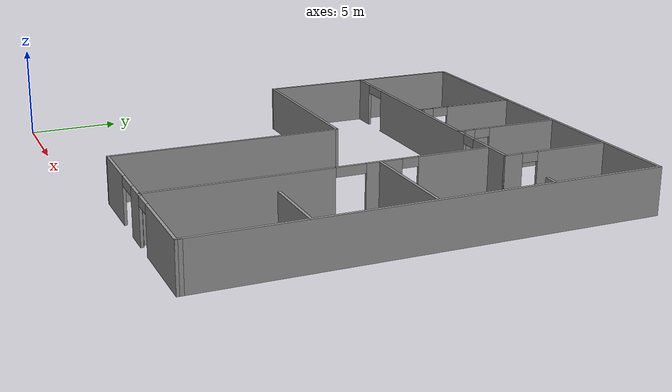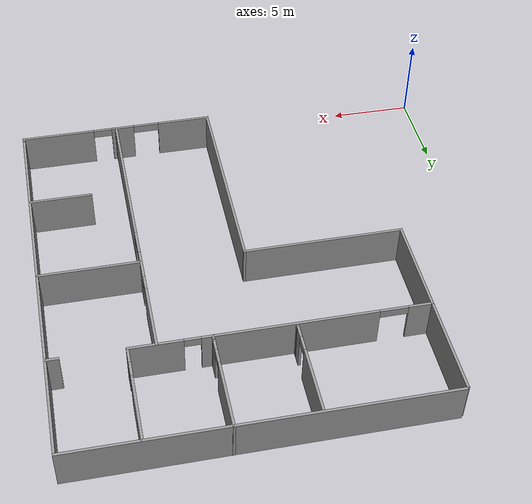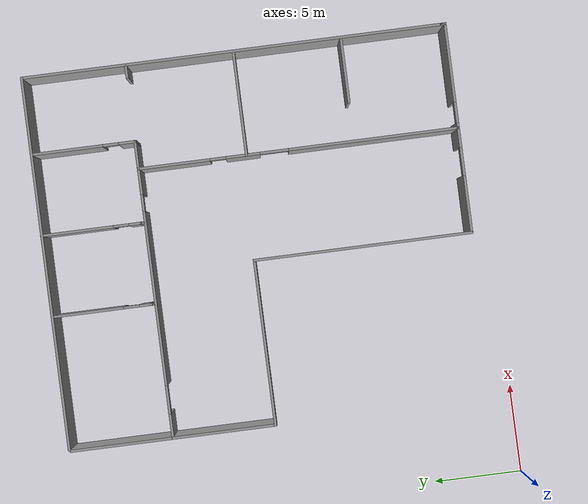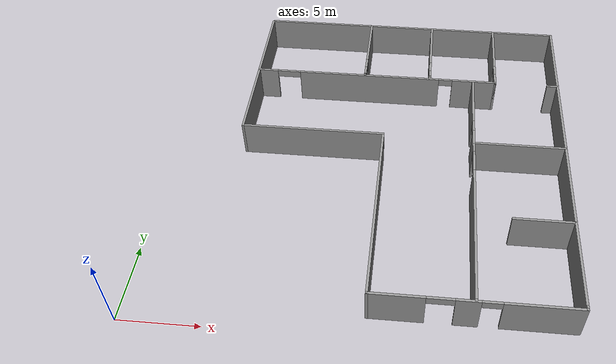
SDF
<?xml version='1.0'?>
<sdf version='1.6'>
  <model name='control_lab'>
    <pose frame=''>15.3955 13.48 0 0 -0 0</pose>
    <link name='Wall_0'>
      <collision name='Wall_0_Collision'>
        <geometry>
          <box>
            <size>21.25 0.15 2.5</size>
          </box>
        </geometry>
        <pose frame=''>0 0 1.25 0 -0 0</pose>
      </collision>
      <visual name='Wall_0_Visual'>
        <pose frame=''>0 0 1.25 0 -0 0</pose>
        <geometry>
          <box>
            <size>21.25 0.15 2.5</size>
          </box>
        </geometry>
        <material>
          <script>
            <uri>file://media/materials/scripts/gazebo.material</uri>
            <name>Gazebo/Grey</name>
          </script>
          <ambient>1 1 1 1</ambient>
        </material>
        <meta>
          <layer>0</layer>
        </meta>
      </visual>
      <pose frame=''>0.05 12.0211 0 0 -0 0</pose>
    </link>
    <link name='Wall_1'>
      <collision name='Wall_1_Collision'>
        <geometry>
          <box>
            <size>24 0.15 2.5</size>
          </box>
        </geometry>
        <pose frame=''>0 0 1.25 0 -0 0</pose>
      </collision>
      <visual name='Wall_1_Visual'>
        <pose frame=''>0 0 1.25 0 -0 0</pose>
        <geometry>
          <box>
            <size>24 0.15 2.5</size>
          </box>
        </geometry>
        <material>
          <script>
            <uri>file://media/materials/scripts/gazebo.material</uri>
            <name>Gazebo/Grey</name>
          </script>
          <ambient>1 1 1 1</ambient>
        </material>
        <meta>
          <layer>0</layer>
        </meta>
      </visual>
      <pose frame=''>10.6 0.096077 0 0 -0 -1.5708</pose>
    </link>
    <link name='Wall_10'>
      <pose frame=''>6.25094 9.06574 0 0 -0 1.5708</pose>
      <visual name='Wall_10_Visual_0'>
        <pose frame=''>-2.49624 0 1.25 0 -0 0</pose>
        <geometry>
          <box>
            <size>1.00752 0.15 2.5</size>
          </box>
        </geometry>
        <material>
          <script>
            <uri>file://media/materials/scripts/gazebo.material</uri>
            <name>Gazebo/Grey</name>
          </script>
          <ambient>1 1 1 1</ambient>
        </material>
        <meta>
          <layer>0</layer>
        </meta>
      </visual>
      <collision name='Wall_10_Collision_0'>
        <geometry>
          <box>
            <size>1.00752 0.15 2.5</size>
          </box>
        </geometry>
        <pose frame=''>-2.49624 0 1.25 0 -0 0</pose>
      </collision>
      <visual name='Wall_10_Visual_1'>
        <pose frame=''>0.953761 0 1.25 0 -0 0</pose>
        <geometry>
          <box>
            <size>4.09248 0.15 2.5</size>
          </box>
        </geometry>
        <material>
          <script>
            <uri>file://media/materials/scripts/gazebo.material</uri>
            <name>Gazebo/Grey</name>
          </script>
          <ambient>1 1 1 1</ambient>
        </material>
        <meta>
          <layer>0</layer>
        </meta>
      </visual>
      <collision name='Wall_10_Collision_1'>
        <geometry>
          <box>
            <size>4.09248 0.15 2.5</size>
          </box>
        </geometry>
        <pose frame=''>0.953761 0 1.25 0 -0 0</pose>
      </collision>
      <visual name='Wall_10_Visual_2'>
        <pose frame=''>-1.54248 0 2.25 0 -0 0</pose>
        <geometry>
          <box>
            <size>0.9 0.15 0.5</size>
          </box>
        </geometry>
        <material>
          <script>
            <uri>file://media/materials/scripts/gazebo.material</uri>
            <name>Gazebo/Grey</name>
          </script>
          <ambient>1 1 1 1</ambient>
        </material>
        <meta>
          <layer>0</layer>
        </meta>
      </visual>
      <collision name='Wall_10_Collision_2'>
        <geometry>
          <box>
            <size>0.9 0.15 0.5</size>
          </box>
        </geometry>
        <pose frame=''>-1.54248 0 2.25 0 -0 0</pose>
      </collision>
    </link>
    <link name='Wall_12'>
      <pose frame=''>-2.96596 9.21591 0 0 -0 -1.5708</pose>
      <visual name='Wall_12_Visual_0'>
        <pose frame=''>-0.818093 0 1.25 0 -0 0</pose>
        <geometry>
          <box>
            <size>4.11381 0.15 2.5</size>
          </box>
        </geometry>
        <material>
          <script>
            <uri>file://media/materials/scripts/gazebo.material</uri>
            <name>Gazebo/Grey</name>
          </script>
          <ambient>1 1 1 1</ambient>
        </material>
        <meta>
          <layer>0</layer>
        </meta>
      </visual>
      <collision name='Wall_12_Collision_0'>
        <geometry>
          <box>
            <size>4.11381 0.15 2.5</size>
          </box>
        </geometry>
        <pose frame=''>-0.818093 0 1.25 0 -0 0</pose>
      </collision>
      <visual name='Wall_12_Visual_1'>
        <pose frame=''>2.50691 0 1.25 0 -0 0</pose>
        <geometry>
          <box>
            <size>0.736186 0.15 2.5</size>
          </box>
        </geometry>
        <material>
          <script>
            <uri>file://media/materials/scripts/gazebo.material</uri>
            <name>Gazebo/Grey</name>
          </script>
          <ambient>1 1 1 1</ambient>
        </material>
        <meta>
          <layer>0</layer>
        </meta>
      </visual>
      <collision name='Wall_12_Collision_1'>
        <geometry>
          <box>
            <size>0.736186 0.15 2.5</size>
          </box>
        </geometry>
        <pose frame=''>2.50691 0 1.25 0 -0 0</pose>
      </collision>
      <visual name='Wall_12_Visual_2'>
        <pose frame=''>1.68881 0 2.25 0 -0 0</pose>
        <geometry>
          <box>
            <size>0.9 0.15 0.5</size>
          </box>
        </geometry>
        <material>
          <script>
            <uri>file://media/materials/scripts/gazebo.material</uri>
            <name>Gazebo/Grey</name>
          </script>
          <ambient>1 1 1 1</ambient>
        </material>
        <meta>
          <layer>0</layer>
        </meta>
      </visual>
      <collision name='Wall_12_Collision_2'>
        <geometry>
          <box>
            <size>0.9 0.15 0.5</size>
          </box>
        </geometry>
        <pose frame=''>1.68881 0 2.25 0 -0 0</pose>
      </collision>
    </link>
    <link name='Wall_13'>
      <collision name='Wall_13_Collision'>
        <geometry>
          <box>
            <size>0.25 0.15 2.5</size>
          </box>
        </geometry>
        <pose frame=''>0 0 1.25 0 -0 0</pose>
      </collision>
      <visual name='Wall_13_Visual'>
        <pose frame=''>0 0 1.25 0 -0 0</pose>
        <geometry>
          <box>
            <size>0.25 0.15 2.5</size>
          </box>
        </geometry>
        <material>
          <script>
            <uri>file://media/materials/scripts/gazebo.material</uri>
            <name>Gazebo/Grey</name>
          </script>
          <ambient>1 1 1 1</ambient>
        </material>
        <meta>
          <layer>0</layer>
        </meta>
      </visual>
      <pose frame=''>-2.96596 6.36592 0 0 -0 -1.5708</pose>
    </link>
    <link name='Wall_14'>
      <collision name='Wall_14_Collision'>
        <geometry>
          <box>
            <size>0.25 0.15 2.5</size>
          </box>
        </geometry>
        <pose frame=''>0 0 1.25 0 -0 0</pose>
      </collision>
      <visual name='Wall_14_Visual'>
        <pose frame=''>0 0 1.25 0 -0 0</pose>
        <geometry>
          <box>
            <size>0.25 0.15 2.5</size>
          </box>
        </geometry>
        <material>
          <script>
            <uri>file://media/materials/scripts/gazebo.material</uri>
            <name>Gazebo/Grey</name>
          </script>
          <ambient>1 1 1 1</ambient>
        </material>
        <meta>
          <layer>0</layer>
        </meta>
      </visual>
      <pose frame=''>-2.96596 6.26591 0 0 -0 -1.5708</pose>
    </link>
    <link name='Wall_16'>
      <pose frame=''>1.64671 9.22892 0 0 -0 -1.5708</pose>
      <visual name='Wall_16_Visual_0'>
        <pose frame=''>-0.809669 0 1.25 0 -0 0</pose>
        <geometry>
          <box>
            <size>4.13066 0.15 2.5</size>
          </box>
        </geometry>
        <material>
          <script>
            <uri>file://media/materials/scripts/gazebo.material</uri>
            <name>Gazebo/Grey</name>
          </script>
          <ambient>1 1 1 1</ambient>
        </material>
        <meta>
          <layer>0</layer>
        </meta>
      </visual>
      <collision name='Wall_16_Collision_0'>
        <geometry>
          <box>
            <size>4.13066 0.15 2.5</size>
          </box>
        </geometry>
        <pose frame=''>-0.809669 0 1.25 0 -0 0</pose>
      </collision>
      <visual name='Wall_16_Visual_1'>
        <pose frame=''>2.51533 0 1.25 0 -0 0</pose>
        <geometry>
          <box>
            <size>0.719338 0.15 2.5</size>
          </box>
        </geometry>
        <material>
          <script>
            <uri>file://media/materials/scripts/gazebo.material</uri>
            <name>Gazebo/Grey</name>
          </script>
          <ambient>1 1 1 1</ambient>
        </material>
        <meta>
          <layer>0</layer>
        </meta>
      </visual>
      <collision name='Wall_16_Collision_1'>
        <geometry>
          <box>
            <size>0.719338 0.15 2.5</size>
          </box>
        </geometry>
        <pose frame=''>2.51533 0 1.25 0 -0 0</pose>
      </collision>
      <visual name='Wall_16_Visual_2'>
        <pose frame=''>1.70566 0 2.25 0 -0 0</pose>
        <geometry>
          <box>
            <size>0.9 0.15 0.5</size>
          </box>
        </geometry>
        <material>
          <script>
            <uri>file://media/materials/scripts/gazebo.material</uri>
            <name>Gazebo/Grey</name>
          </script>
          <ambient>1 1 1 1</ambient>
        </material>
        <meta>
          <layer>0</layer>
        </meta>
      </visual>
      <collision name='Wall_16_Collision_2'>
        <geometry>
          <box>
            <size>0.9 0.15 0.5</size>
          </box>
        </geometry>
        <pose frame=''>1.70566 0 2.25 0 -0 0</pose>
      </collision>
    </link>
    <link name='Wall_19'>
      <collision name='Wall_19_Collision'>
        <geometry>
          <box>
            <size>0.416341 0.15 2.5</size>
          </box>
        </geometry>
        <pose frame=''>0 0 1.25 0 -0 0</pose>
      </collision>
      <visual name='Wall_19_Visual'>
        <pose frame=''>0 0 1.25 0 -0 0</pose>
        <geometry>
          <box>
            <size>0.416341 0.15 2.5</size>
          </box>
        </geometry>
        <material>
          <script>
            <uri>file://media/materials/scripts/gazebo.material</uri>
            <name>Gazebo/Grey</name>
          </script>
          <ambient>1 1 1 1</ambient>
        </material>
        <meta>
          <layer>0</layer>
        </meta>
      </visual>
      <pose frame=''>1.64593 6.29575 0 0 -0 -1.57672</pose>
    </link>
    <link name='Wall_2'>
      <collision name='Wall_2_Collision'>
        <geometry>
          <box>
            <size>0.25 0.15 2.5</size>
          </box>
        </geometry>
        <pose frame=''>0 0 1.25 0 -0 0</pose>
      </collision>
      <visual name='Wall_2_Visual'>
        <pose frame=''>0 0 1.25 0 -0 0</pose>
        <geometry>
          <box>
            <size>0.25 0.15 2.5</size>
          </box>
        </geometry>
        <material>
          <script>
            <uri>file://media/materials/scripts/gazebo.material</uri>
            <name>Gazebo/Grey</name>
          </script>
          <ambient>1 1 1 1</ambient>
        </material>
        <meta>
          <layer>0</layer>
        </meta>
      </visual>
      <pose frame=''>10.6 -11.8789 0 0 -0 -1.5708</pose>
    </link>
    <link name='Wall_21'>
      <pose frame=''>4.69458 -2.91427 0 0 -0 -1.5708</pose>
      <visual name='Wall_21_Visual_0'>
        <pose frame=''>-7.06126 0 1.25 0 -0 0</pose>
        <geometry>
          <box>
            <size>4.12747 0.15 2.5</size>
          </box>
        </geometry>
        <material>
          <script>
            <uri>file://media/materials/scripts/gazebo.material</uri>
            <name>Gazebo/Grey</name>
          </script>
          <ambient>1 1 1 1</ambient>
        </material>
        <meta>
          <layer>0</layer>
        </meta>
      </visual>
      <collision name='Wall_21_Collision_0'>
        <geometry>
          <box>
            <size>4.12747 0.15 2.5</size>
          </box>
        </geometry>
        <pose frame=''>-7.06126 0 1.25 0 -0 0</pose>
      </collision>
      <visual name='Wall_21_Visual_1'>
        <pose frame=''>-3.12432 0 1.25 0 -0 0</pose>
        <geometry>
          <box>
            <size>1.94643 0.15 2.5</size>
          </box>
        </geometry>
        <material>
          <script>
            <uri>file://media/materials/scripts/gazebo.material</uri>
            <name>Gazebo/Grey</name>
          </script>
          <ambient>1 1 1 1</ambient>
        </material>
        <meta>
          <layer>0</layer>
        </meta>
      </visual>
      <collision name='Wall_21_Collision_1'>
        <geometry>
          <box>
            <size>1.94643 0.15 2.5</size>
          </box>
        </geometry>
        <pose frame=''>-3.12432 0 1.25 0 -0 0</pose>
      </collision>
      <visual name='Wall_21_Visual_2'>
        <pose frame=''>4.29858 0 1.25 0 -0 0</pose>
        <geometry>
          <box>
            <size>9.65283 0.15 2.5</size>
          </box>
        </geometry>
        <material>
          <script>
            <uri>file://media/materials/scripts/gazebo.material</uri>
            <name>Gazebo/Grey</name>
          </script>
          <ambient>1 1 1 1</ambient>
        </material>
        <meta>
          <layer>0</layer>
        </meta>
      </visual>
      <collision name='Wall_21_Collision_2'>
        <geometry>
          <box>
            <size>9.65283 0.15 2.5</size>
          </box>
        </geometry>
        <pose frame=''>4.29858 0 1.25 0 -0 0</pose>
      </collision>
      <visual name='Wall_21_Visual_3'>
        <pose frame=''>-4.54753 0 2.25 0 -0 0</pose>
        <geometry>
          <box>
            <size>0.9 0.15 0.5</size>
          </box>
        </geometry>
        <material>
          <script>
            <uri>file://media/materials/scripts/gazebo.material</uri>
            <name>Gazebo/Grey</name>
          </script>
          <ambient>1 1 1 1</ambient>
        </material>
        <meta>
          <layer>0</layer>
        </meta>
      </visual>
      <collision name='Wall_21_Collision_3'>
        <geometry>
          <box>
            <size>0.9 0.15 0.5</size>
          </box>
        </geometry>
        <pose frame=''>-4.54753 0 2.25 0 -0 0</pose>
      </collision>
      <visual name='Wall_21_Visual_4'>
        <pose frame=''>-1.33947 0 2.25 0 -0 0</pose>
        <geometry>
          <box>
            <size>1.62327 0.15 0.5</size>
          </box>
        </geometry>
        <material>
          <script>
            <uri>file://media/materials/scripts/gazebo.material</uri>
            <name>Gazebo/Grey</name>
          </script>
          <ambient>1 1 1 1</ambient>
        </material>
        <meta>
          <layer>0</layer>
        </meta>
      </visual>
      <collision name='Wall_21_Collision_4'>
        <geometry>
          <box>
            <size>1.62327 0.15 0.5</size>
          </box>
        </geometry>
        <pose frame=''>-1.33947 0 2.25 0 -0 0</pose>
      </collision>
    </link>
    <link name='Wall_22'>
      <collision name='Wall_22_Collision'>
        <geometry>
          <box>
            <size>0.16 0.15 2.5</size>
          </box>
        </geometry>
        <pose frame=''>0 0 1.25 0 -0 0</pose>
      </collision>
      <visual name='Wall_22_Visual'>
        <pose frame=''>0 0 1.25 0 -0 0</pose>
        <geometry>
          <box>
            <size>0.16 0.15 2.5</size>
          </box>
        </geometry>
        <material>
          <script>
            <uri>file://media/materials/scripts/gazebo.material</uri>
            <name>Gazebo/Grey</name>
          </script>
          <ambient>1 1 1 1</ambient>
        </material>
        <meta>
          <layer>0</layer>
        </meta>
      </visual>
      <pose frame=''>4.69958 -11.9643 0 0 -0 0</pose>
    </link>
    <link name='Wall_24'>
      <collision name='Wall_24_Collision'>
        <geometry>
          <box>
            <size>3.75 0.15 2.5</size>
          </box>
        </geometry>
        <pose frame=''>0 0 1.25 0 -0 0</pose>
      </collision>
      <visual name='Wall_24_Visual'>
        <pose frame=''>0 0 1.25 0 -0 0</pose>
        <geometry>
          <box>
            <size>3.75 0.15 2.5</size>
          </box>
        </geometry>
        <material>
          <script>
            <uri>file://media/materials/scripts/gazebo.material</uri>
            <name>Gazebo/Grey</name>
          </script>
          <ambient>1 1 1 1</ambient>
        </material>
        <meta>
          <layer>0</layer>
        </meta>
      </visual>
      <pose frame=''>8.74071 -6.10813 0 0 -0 0</pose>
    </link>
    <link name='Wall_26'>
      <collision name='Wall_26_Collision'>
        <geometry>
          <box>
            <size>6 0.15 2.5</size>
          </box>
        </geometry>
        <pose frame=''>0 0 1.25 0 -0 0</pose>
      </collision>
      <visual name='Wall_26_Visual'>
        <pose frame=''>0 0 1.25 0 -0 0</pose>
        <geometry>
          <box>
            <size>6 0.15 2.5</size>
          </box>
        </geometry>
        <material>
          <script>
            <uri>file://media/materials/scripts/gazebo.material</uri>
            <name>Gazebo/Grey</name>
          </script>
          <ambient>1 1 1 1</ambient>
        </material>
        <meta>
          <layer>0</layer>
        </meta>
      </visual>
      <pose frame=''>7.63002 0.005791 0 0 -0 0</pose>
    </link>
    <link name='Wall_28'>
      <collision name='Wall_28_Collision'>
        <geometry>
          <box>
            <size>0.75 0.15 2.5</size>
          </box>
        </geometry>
        <pose frame=''>0 0 1.25 0 -0 0</pose>
      </collision>
      <visual name='Wall_28_Visual'>
        <pose frame=''>0 0 1.25 0 -0 0</pose>
        <geometry>
          <box>
            <size>0.75 0.15 2.5</size>
          </box>
        </geometry>
        <material>
          <script>
            <uri>file://media/materials/scripts/gazebo.material</uri>
            <name>Gazebo/Grey</name>
          </script>
          <ambient>1 1 1 1</ambient>
        </material>
        <meta>
          <layer>0</layer>
        </meta>
      </visual>
      <pose frame=''>10.2253 6.11548 0 0 -0 0</pose>
    </link>
    <link name='Wall_3'>
      <collision name='Wall_3_Collision'>
        <geometry>
          <box>
            <size>0.25 0.15 2.5</size>
          </box>
        </geometry>
        <pose frame=''>0 0 1.25 0 -0 0</pose>
      </collision>
      <visual name='Wall_3_Visual'>
        <pose frame=''>0 0 1.25 0 -0 0</pose>
        <geometry>
          <box>
            <size>0.25 0.15 2.5</size>
          </box>
        </geometry>
        <material>
          <script>
            <uri>file://media/materials/scripts/gazebo.material</uri>
            <name>Gazebo/Grey</name>
          </script>
          <ambient>1 1 1 1</ambient>
        </material>
        <meta>
          <layer>0</layer>
        </meta>
      </visual>
      <pose frame=''>10.6 -11.9789 0 0 -0 -1.5708</pose>
    </link>
    <link name='Wall_4'>
      <pose frame=''>4.675 -12.0289 0 0 -0 3.14159</pose>
      <visual name='Wall_4_Visual_0'>
        <pose frame=''>-3.73569 0 1.25 0 -0 0</pose>
        <geometry>
          <box>
            <size>4.52863 0.15 2.5</size>
          </box>
        </geometry>
        <material>
          <script>
            <uri>file://media/materials/scripts/gazebo.material</uri>
            <name>Gazebo/Grey</name>
          </script>
          <ambient>1 1 1 1</ambient>
        </material>
        <meta>
          <layer>0</layer>
        </meta>
      </visual>
      <collision name='Wall_4_Collision_0'>
        <geometry>
          <box>
            <size>4.52863 0.15 2.5</size>
          </box>
        </geometry>
        <pose frame=''>-3.73569 0 1.25 0 -0 0</pose>
      </collision>
      <visual name='Wall_4_Visual_1'>
        <pose frame=''>0.391674 0 1.25 0 -0 0</pose>
        <geometry>
          <box>
            <size>1.42174 0.15 2.5</size>
          </box>
        </geometry>
        <material>
          <script>
            <uri>file://media/materials/scripts/gazebo.material</uri>
            <name>Gazebo/Grey</name>
          </script>
          <ambient>1 1 1 1</ambient>
        </material>
        <meta>
          <layer>0</layer>
        </meta>
      </visual>
      <collision name='Wall_4_Collision_1'>
        <geometry>
          <box>
            <size>1.42174 0.15 2.5</size>
          </box>
        </geometry>
        <pose frame=''>0.391674 0 1.25 0 -0 0</pose>
      </collision>
      <visual name='Wall_4_Visual_2'>
        <pose frame=''>4.3491 0 1.25 0 -0 0</pose>
        <geometry>
          <box>
            <size>3.3018 0.15 2.5</size>
          </box>
        </geometry>
        <material>
          <script>
            <uri>file://media/materials/scripts/gazebo.material</uri>
            <name>Gazebo/Grey</name>
          </script>
          <ambient>1 1 1 1</ambient>
        </material>
        <meta>
          <layer>0</layer>
        </meta>
      </visual>
      <collision name='Wall_4_Collision_2'>
        <geometry>
          <box>
            <size>3.3018 0.15 2.5</size>
          </box>
        </geometry>
        <pose frame=''>4.3491 0 1.25 0 -0 0</pose>
      </collision>
      <visual name='Wall_4_Visual_3'>
        <pose frame=''>-0.895283 0 2.25 0 -0 0</pose>
        <geometry>
          <box>
            <size>1.15217 0.15 0.5</size>
          </box>
        </geometry>
        <material>
          <script>
            <uri>file://media/materials/scripts/gazebo.material</uri>
            <name>Gazebo/Grey</name>
          </script>
          <ambient>1 1 1 1</ambient>
        </material>
        <meta>
          <layer>0</layer>
        </meta>
      </visual>
      <collision name='Wall_4_Collision_3'>
        <geometry>
          <box>
            <size>1.15217 0.15 0.5</size>
          </box>
        </geometry>
        <pose frame=''>-0.895283 0 2.25 0 -0 0</pose>
      </collision>
      <visual name='Wall_4_Visual_4'>
        <pose frame=''>1.90037 0 2.25 0 -0 0</pose>
        <geometry>
          <box>
            <size>1.59565 0.15 0.5</size>
          </box>
        </geometry>
        <material>
          <script>
            <uri>file://media/materials/scripts/gazebo.material</uri>
            <name>Gazebo/Grey</name>
          </script>
          <ambient>1 1 1 1</ambient>
        </material>
        <meta>
          <layer>0</layer>
        </meta>
      </visual>
      <collision name='Wall_4_Collision_4'>
        <geometry>
          <box>
            <size>1.59565 0.15 0.5</size>
          </box>
        </geometry>
        <pose frame=''>1.90037 0 2.25 0 -0 0</pose>
      </collision>
    </link>
    <link name='Wall_5'>
      <collision name='Wall_5_Collision'>
        <geometry>
          <box>
            <size>12.5 0.15 2.5</size>
          </box>
        </geometry>
        <pose frame=''>0 0 1.25 0 -0 0</pose>
      </collision>
      <visual name='Wall_5_Visual'>
        <pose frame=''>0 0 1.25 0 -0 0</pose>
        <geometry>
          <box>
            <size>12.5 0.15 2.5</size>
          </box>
        </geometry>
        <material>
          <script>
            <uri>file://media/materials/scripts/gazebo.material</uri>
            <name>Gazebo/Grey</name>
          </script>
          <ambient>1 1 1 1</ambient>
        </material>
        <meta>
          <layer>0</layer>
        </meta>
      </visual>
      <pose frame=''>-1.25 -5.85392 0 0 -0 1.5708</pose>
    </link>
    <link name='Wall_6'>
      <collision name='Wall_6_Collision'>
        <geometry>
          <box>
            <size>9.5 0.15 2.5</size>
          </box>
        </geometry>
        <pose frame=''>0 0 1.25 0 -0 0</pose>
      </collision>
      <visual name='Wall_6_Visual'>
        <pose frame=''>0 0 1.25 0 -0 0</pose>
        <geometry>
          <box>
            <size>9.5 0.15 2.5</size>
          </box>
        </geometry>
        <material>
          <script>
            <uri>file://media/materials/scripts/gazebo.material</uri>
            <name>Gazebo/Grey</name>
          </script>
          <ambient>1 1 1 1</ambient>
        </material>
        <meta>
          <layer>0</layer>
        </meta>
      </visual>
      <pose frame=''>-5.925 0.321077 0 0 -0 3.14159</pose>
    </link>
    <link name='Wall_7'>
      <collision name='Wall_7_Collision'>
        <geometry>
          <box>
            <size>11.75 0.15 2.5</size>
          </box>
        </geometry>
        <pose frame=''>0 0 1.25 0 -0 0</pose>
      </collision>
      <visual name='Wall_7_Visual'>
        <pose frame=''>0 0 1.25 0 -0 0</pose>
        <geometry>
          <box>
            <size>11.75 0.15 2.5</size>
          </box>
        </geometry>
        <material>
          <script>
            <uri>file://media/materials/scripts/gazebo.material</uri>
            <name>Gazebo/Grey</name>
          </script>
          <ambient>1 1 1 1</ambient>
        </material>
        <meta>
          <layer>0</layer>
        </meta>
      </visual>
      <pose frame=''>-10.6 6.12108 0 0 -0 1.5708</pose>
    </link>
    <link name='Wall_9'>
      <pose frame=''>-2.17406 6.14074 0 0 -0 0</pose>
      <visual name='Wall_9_Visual_0'>
        <pose frame=''>-7.78067 0 1.25 0 -0 0</pose>
        <geometry>
          <box>
            <size>1.43866 0.15 2.5</size>
          </box>
        </geometry>
        <material>
          <script>
            <uri>file://media/materials/scripts/gazebo.material</uri>
            <name>Gazebo/Grey</name>
          </script>
          <ambient>1 1 1 1</ambient>
        </material>
        <meta>
          <layer>0</layer>
        </meta>
      </visual>
      <collision name='Wall_9_Collision_0'>
        <geometry>
          <box>
            <size>1.43866 0.15 2.5</size>
          </box>
        </geometry>
        <pose frame=''>-7.78067 0 1.25 0 -0 0</pose>
      </collision>
      <visual name='Wall_9_Visual_1'>
        <pose frame=''>-0.496979 0 1.25 0 -0 0</pose>
        <geometry>
          <box>
            <size>9.90872 0.15 2.5</size>
          </box>
        </geometry>
        <material>
          <script>
            <uri>file://media/materials/scripts/gazebo.material</uri>
            <name>Gazebo/Grey</name>
          </script>
          <ambient>1 1 1 1</ambient>
        </material>
        <meta>
          <layer>0</layer>
        </meta>
      </visual>
      <collision name='Wall_9_Collision_1'>
        <geometry>
          <box>
            <size>9.90872 0.15 2.5</size>
          </box>
        </geometry>
        <pose frame=''>-0.496979 0 1.25 0 -0 0</pose>
      </collision>
      <visual name='Wall_9_Visual_2'>
        <pose frame=''>6.94869 0 1.25 0 -0 0</pose>
        <geometry>
          <box>
            <size>3.10262 0.15 2.5</size>
          </box>
        </geometry>
        <material>
          <script>
            <uri>file://media/materials/scripts/gazebo.material</uri>
            <name>Gazebo/Grey</name>
          </script>
          <ambient>1 1 1 1</ambient>
        </material>
        <meta>
          <layer>0</layer>
        </meta>
      </visual>
      <collision name='Wall_9_Collision_2'>
        <geometry>
          <box>
            <size>3.10262 0.15 2.5</size>
          </box>
        </geometry>
        <pose frame=''>6.94869 0 1.25 0 -0 0</pose>
      </collision>
      <visual name='Wall_9_Visual_3'>
        <pose frame=''>-6.25634 0 2.25 0 -0 0</pose>
        <geometry>
          <box>
            <size>1.61 0.15 0.5</size>
          </box>
        </geometry>
        <material>
          <script>
            <uri>file://media/materials/scripts/gazebo.material</uri>
            <name>Gazebo/Grey</name>
          </script>
          <ambient>1 1 1 1</ambient>
        </material>
        <meta>
          <layer>0</layer>
        </meta>
      </visual>
      <collision name='Wall_9_Collision_3'>
        <geometry>
          <box>
            <size>1.61 0.15 0.5</size>
          </box>
        </geometry>
        <pose frame=''>-6.25634 0 2.25 0 -0 0</pose>
      </collision>
      <visual name='Wall_9_Visual_4'>
        <pose frame=''>4.92738 0 2.25 0 -0 0</pose>
        <geometry>
          <box>
            <size>0.94 0.15 0.5</size>
          </box>
        </geometry>
        <material>
          <script>
            <uri>file://media/materials/scripts/gazebo.material</uri>
            <name>Gazebo/Grey</name>
          </script>
          <ambient>1 1 1 1</ambient>
        </material>
        <meta>
          <layer>0</layer>
        </meta>
      </visual>
      <collision name='Wall_9_Collision_4'>
        <geometry>
          <box>
            <size>0.94 0.15 0.5</size>
          </box>
        </geometry>
        <pose frame=''>4.92738 0 2.25 0 -0 0</pose>
      </collision>
    </link>
    <static>1</static>
  </model>
</sdf>
